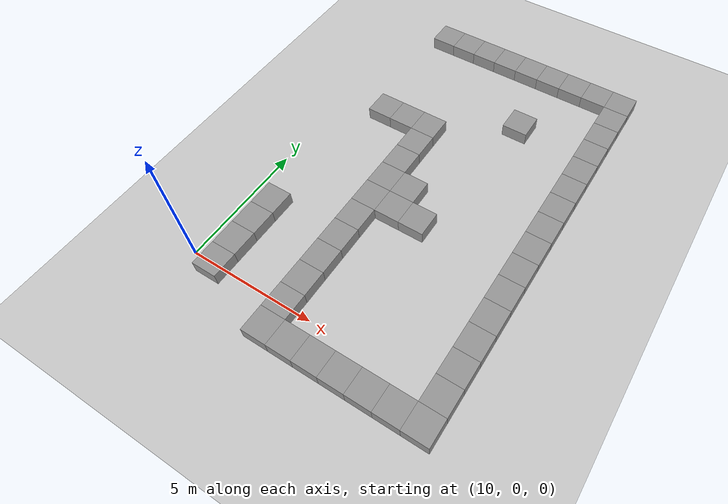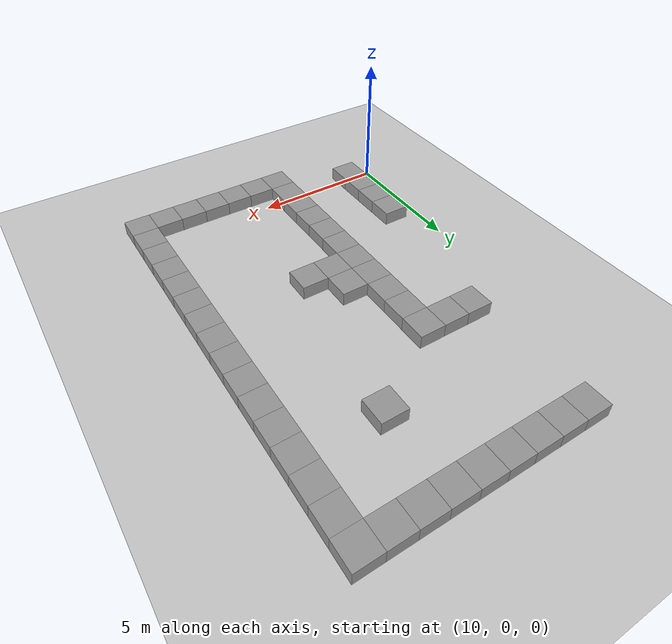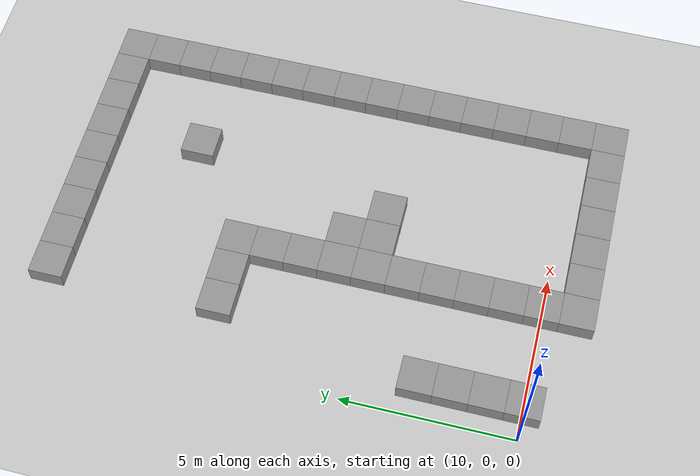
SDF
<sdf version="1.4">
 <world name="default">
  <model name="ground_plane">
   <static>1</static>
   <link name="link">
    <collision name="collision">
     <geometry><plane><normal>0 0 1</normal><size>100 100</size></plane></geometry>
     <surface><friction><ode><mu>100</mu><mu2>50</mu2></ode></friction></surface>
    </collision>
    <visual name="visual">
     <cast_shadows>0</cast_shadows>
     <geometry><plane><normal>0 0 1</normal><size>100 100</size></plane></geometry>
     <material>
      <script><uri>file://media/materials/scripts/gazebo.material</uri><name>Gazebo/Grey</name></script>
     </material>
    </visual>
    <velocity_decay><linear>0</linear><angular>0</angular></velocity_decay>
   </link>
  </model>
  <model name="unit_box_39">
   <pose>12 14 0 0 -0 0</pose>
   <link name="link">
    <inertial>
     <mass>1</mass>
     <inertia><ixx>1</ixx><ixy>0</ixy><ixz>0</ixz><iyy>1</iyy><iyz>0</iyz><izz>1</izz></inertia>
    </inertial>
    <collision name="collision"><geometry><box><size>1 1 1</size></box></geometry></collision>
    <visual name="visual">
     <geometry><box><size>1 1 1</size></box></geometry>
     <material>
      <script><uri>file://media/materials/scripts/gazebo.material</uri><name>Gazebo/Grey</name></script>
     </material>
    </visual>
    <velocity_decay><linear>0</linear><angular>0</angular></velocity_decay>
   </link>
   <static>1</static>
  </model>
  <model name="unit_box_40">
   <pose>13 14 0 0 -0 0</pose>
   <link name="link">
    <inertial>
     <mass>1</mass>
     <inertia><ixx>1</ixx><ixy>0</ixy><ixz>0</ixz><iyy>1</iyy><iyz>0</iyz><izz>1</izz></inertia>
    </inertial>
    <collision name="collision"><geometry><box><size>1 1 1</size></box></geometry></collision>
    <visual name="visual">
     <geometry><box><size>1 1 1</size></box></geometry>
     <material>
      <script><uri>file://media/materials/scripts/gazebo.material</uri><name>Gazebo/Grey</name></script>
     </material>
    </visual>
    <velocity_decay><linear>0</linear><angular>0</angular></velocity_decay>
   </link>
   <static>1</static>
  </model>
  <model name="unit_box_41">
   <pose>14 14 0 0 -0 0</pose>
   <link name="link">
    <inertial>
     <mass>1</mass>
     <inertia><ixx>1</ixx><ixy>0</ixy><ixz>0</ixz><iyy>1</iyy><iyz>0</iyz><izz>1</izz></inertia>
    </inertial>
    <collision name="collision"><geometry><box><size>1 1 1</size></box></geometry></collision>
    <visual name="visual">
     <geometry><box><size>1 1 1</size></box></geometry>
     <material>
      <script><uri>file://media/materials/scripts/gazebo.material</uri><name>Gazebo/Grey</name></script>
     </material>
    </visual>
    <velocity_decay><linear>0</linear><angular>0</angular></velocity_decay>
   </link>
   <static>1</static>
  </model>
  <model name="unit_box_42">
   <pose>15 14 0 0 -0 0</pose>
   <link name="link">
    <inertial>
     <mass>1</mass>
     <inertia><ixx>1</ixx><ixy>0</ixy><ixz>0</ixz><iyy>1</iyy><iyz>0</iyz><izz>1</izz></inertia>
    </inertial>
    <collision name="collision"><geometry><box><size>1 1 1</size></box></geometry></collision>
    <visual name="visual">
     <geometry><box><size>1 1 1</size></box></geometry>
     <material>
      <script><uri>file://media/materials/scripts/gazebo.material</uri><name>Gazebo/Grey</name></script>
     </material>
    </visual>
    <velocity_decay><linear>0</linear><angular>0</angular></velocity_decay>
   </link>
   <static>1</static>
  </model>
  <model name="unit_box_43">
   <pose>16 14 0 0 -0 0</pose>
   <link name="link">
    <inertial>
     <mass>1</mass>
     <inertia><ixx>1</ixx><ixy>0</ixy><ixz>0</ixz><iyy>1</iyy><iyz>0</iyz><izz>1</izz></inertia>
    </inertial>
    <collision name="collision"><geometry><box><size>1 1 1</size></box></geometry></collision>
    <visual name="visual">
     <geometry><box><size>1 1 1</size></box></geometry>
     <material>
      <script><uri>file://media/materials/scripts/gazebo.material</uri><name>Gazebo/Grey</name></script>
     </material>
    </visual>
    <velocity_decay><linear>0</linear><angular>0</angular></velocity_decay>
   </link>
   <static>1</static>
  </model>
  <model name="unit_box_44">
   <pose>17 14 0 0 -0 0</pose>
   <link name="link">
    <inertial>
     <mass>1</mass>
     <inertia><ixx>1</ixx><ixy>0</ixy><ixz>0</ixz><iyy>1</iyy><iyz>0</iyz><izz>1</izz></inertia>
    </inertial>
    <collision name="collision"><geometry><box><size>1 1 1</size></box></geometry></collision>
    <visual name="visual">
     <geometry><box><size>1 1 1</size></box></geometry>
     <material>
      <script><uri>file://media/materials/scripts/gazebo.material</uri><name>Gazebo/Grey</name></script>
     </material>
    </visual>
    <velocity_decay><linear>0</linear><angular>0</angular></velocity_decay>
   </link>
   <static>1</static>
  </model>
  <model name="unit_box_45">
   <pose>18 14 0 0 -0 0</pose>
   <link name="link">
    <inertial>
     <mass>1</mass>
     <inertia><ixx>1</ixx><ixy>0</ixy><ixz>0</ixz><iyy>1</iyy><iyz>0</iyz><izz>1</izz></inertia>
    </inertial>
    <collision name="collision"><geometry><box><size>1 1 1</size></box></geometry></collision>
    <visual name="visual">
     <geometry><box><size>1 1 1</size></box></geometry>
     <material>
      <script><uri>file://media/materials/scripts/gazebo.material</uri><name>Gazebo/Grey</name></script>
     </material>
    </visual>
    <velocity_decay><linear>0</linear><angular>0</angular></velocity_decay>
   </link>
   <static>1</static>
  </model>
  <model name="unit_box_46">
   <pose>19 14 0 0 -0 0</pose>
   <link name="link">
    <inertial>
     <mass>1</mass>
     <inertia><ixx>1</ixx><ixy>0</ixy><ixz>0</ixz><iyy>1</iyy><iyz>0</iyz><izz>1</izz></inertia>
    </inertial>
    <collision name="collision"><geometry><box><size>1 1 1</size></box></geometry></collision>
    <visual name="visual">
     <geometry><box><size>1 1 1</size></box></geometry>
     <material>
      <script><uri>file://media/materials/scripts/gazebo.material</uri><name>Gazebo/Grey</name></script>
     </material>
    </visual>
    <velocity_decay><linear>0</linear><angular>0</angular></velocity_decay>
   </link>
   <static>1</static>
  </model>
  <model name="unit_box_47">
   <pose>20 14 0 0 -0 0</pose>
   <link name="link">
    <inertial>
     <mass>1</mass>
     <inertia><ixx>1</ixx><ixy>0</ixy><ixz>0</ixz><iyy>1</iyy><iyz>0</iyz><izz>1</izz></inertia>
    </inertial>
    <collision name="collision"><geometry><box><size>1 1 1</size></box></geometry></collision>
    <visual name="visual">
     <geometry><box><size>1 1 1</size></box></geometry>
     <material>
      <script><uri>file://media/materials/scripts/gazebo.material</uri><name>Gazebo/Grey</name></script>
     </material>
    </visual>
    <velocity_decay><linear>0</linear><angular>0</angular></velocity_decay>
   </link>
   <static>1</static>
  </model>
  <model name="unit_box_48">
   <pose>20 13 0 0 -0 0</pose>
   <link name="link">
    <inertial>
     <mass>1</mass>
     <inertia><ixx>1</ixx><ixy>0</ixy><ixz>0</ixz><iyy>1</iyy><iyz>0</iyz><izz>1</izz></inertia>
    </inertial>
    <collision name="collision"><geometry><box><size>1 1 1</size></box></geometry></collision>
    <visual name="visual">
     <geometry><box><size>1 1 1</size></box></geometry>
     <material>
      <script><uri>file://media/materials/scripts/gazebo.material</uri><name>Gazebo/Grey</name></script>
     </material>
    </visual>
    <velocity_decay><linear>0</linear><angular>0</angular></velocity_decay>
   </link>
   <static>1</static>
  </model>
  <model name="unit_box_49">
   <pose>20 12 0 0 -0 0</pose>
   <link name="link">
    <inertial>
     <mass>1</mass>
     <inertia><ixx>1</ixx><ixy>0</ixy><ixz>0</ixz><iyy>1</iyy><iyz>0</iyz><izz>1</izz></inertia>
    </inertial>
    <collision name="collision"><geometry><box><size>1 1 1</size></box></geometry></collision>
    <visual name="visual">
     <geometry><box><size>1 1 1</size></box></geometry>
     <material>
      <script><uri>file://media/materials/scripts/gazebo.material</uri><name>Gazebo/Grey</name></script>
     </material>
    </visual>
    <velocity_decay><linear>0</linear><angular>0</angular></velocity_decay>
   </link>
   <static>1</static>
  </model>
  <model name="unit_box_50">
   <pose>20 11 0 0 -0 0</pose>
   <link name="link">
    <inertial>
     <mass>1</mass>
     <inertia><ixx>1</ixx><ixy>0</ixy><ixz>0</ixz><iyy>1</iyy><iyz>0</iyz><izz>1</izz></inertia>
    </inertial>
    <collision name="collision"><geometry><box><size>1 1 1</size></box></geometry></collision>
    <visual name="visual">
     <geometry><box><size>1 1 1</size></box></geometry>
     <material>
      <script><uri>file://media/materials/scripts/gazebo.material</uri><name>Gazebo/Grey</name></script>
     </material>
    </visual>
    <velocity_decay><linear>0</linear><angular>0</angular></velocity_decay>
   </link>
   <static>1</static>
  </model>
  <model name="unit_box_51">
   <pose>20 10 0 0 -0 0</pose>
   <link name="link">
    <inertial>
     <mass>1</mass>
     <inertia><ixx>1</ixx><ixy>0</ixy><ixz>0</ixz><iyy>1</iyy><iyz>0</iyz><izz>1</izz></inertia>
    </inertial>
    <collision name="collision"><geometry><box><size>1 1 1</size></box></geometry></collision>
    <visual name="visual">
     <geometry><box><size>1 1 1</size></box></geometry>
     <material>
      <script><uri>file://media/materials/scripts/gazebo.material</uri><name>Gazebo/Grey</name></script>
     </material>
    </visual>
    <velocity_decay><linear>0</linear><angular>0</angular></velocity_decay>
   </link>
   <static>1</static>
  </model>
  <model name="unit_box_52">
   <pose>20 9 0 0 -0 0</pose>
   <link name="link">
    <inertial>
     <mass>1</mass>
     <inertia><ixx>1</ixx><ixy>0</ixy><ixz>0</ixz><iyy>1</iyy><iyz>0</iyz><izz>1</izz></inertia>
    </inertial>
    <collision name="collision"><geometry><box><size>1 1 1</size></box></geometry></collision>
    <visual name="visual">
     <geometry><box><size>1 1 1</size></box></geometry>
     <material>
      <script><uri>file://media/materials/scripts/gazebo.material</uri><name>Gazebo/Grey</name></script>
     </material>
    </visual>
    <velocity_decay><linear>0</linear><angular>0</angular></velocity_decay>
   </link>
   <static>1</static>
  </model>
  <model name="unit_box_53">
   <pose>20 8 0 0 -0 0</pose>
   <link name="link">
    <inertial>
     <mass>1</mass>
     <inertia><ixx>1</ixx><ixy>0</ixy><ixz>0</ixz><iyy>1</iyy><iyz>0</iyz><izz>1</izz></inertia>
    </inertial>
    <collision name="collision"><geometry><box><size>1 1 1</size></box></geometry></collision>
    <visual name="visual">
     <geometry><box><size>1 1 1</size></box></geometry>
     <material>
      <script><uri>file://media/materials/scripts/gazebo.material</uri><name>Gazebo/Grey</name></script>
     </material>
    </visual>
    <velocity_decay><linear>0</linear><angular>0</angular></velocity_decay>
   </link>
   <static>1</static>
  </model>
  <model name="unit_box_54">
   <pose>20 7 0 0 -0 0</pose>
   <link name="link">
    <inertial>
     <mass>1</mass>
     <inertia><ixx>1</ixx><ixy>0</ixy><ixz>0</ixz><iyy>1</iyy><iyz>0</iyz><izz>1</izz></inertia>
    </inertial>
    <collision name="collision"><geometry><box><size>1 1 1</size></box></geometry></collision>
    <visual name="visual">
     <geometry><box><size>1 1 1</size></box></geometry>
     <material>
      <script><uri>file://media/materials/scripts/gazebo.material</uri><name>Gazebo/Grey</name></script>
     </material>
    </visual>
    <velocity_decay><linear>0</linear><angular>0</angular></velocity_decay>
   </link>
   <static>1</static>
  </model>
  <model name="unit_box_55">
   <pose>20 6 0 0 -0 0</pose>
   <link name="link">
    <inertial>
     <mass>1</mass>
     <inertia><ixx>1</ixx><ixy>0</ixy><ixz>0</ixz><iyy>1</iyy><iyz>0</iyz><izz>1</izz></inertia>
    </inertial>
    <collision name="collision"><geometry><box><size>1 1 1</size></box></geometry></collision>
    <visual name="visual">
     <geometry><box><size>1 1 1</size></box></geometry>
     <material>
      <script><uri>file://media/materials/scripts/gazebo.material</uri><name>Gazebo/Grey</name></script>
     </material>
    </visual>
    <velocity_decay><linear>0</linear><angular>0</angular></velocity_decay>
   </link>
   <static>1</static>
  </model>
  <model name="unit_box_56">
   <pose>20 5 0 0 -0 0</pose>
   <link name="link">
    <inertial>
     <mass>1</mass>
     <inertia><ixx>1</ixx><ixy>0</ixy><ixz>0</ixz><iyy>1</iyy><iyz>0</iyz><izz>1</izz></inertia>
    </inertial>
    <collision name="collision"><geometry><box><size>1 1 1</size></box></geometry></collision>
    <visual name="visual">
     <geometry><box><size>1 1 1</size></box></geometry>
     <material>
      <script><uri>file://media/materials/scripts/gazebo.material</uri><name>Gazebo/Grey</name></script>
     </material>
    </visual>
    <velocity_decay><linear>0</linear><angular>0</angular></velocity_decay>
   </link>
   <static>1</static>
  </model>
  <model name="unit_box_57">
   <pose>20 4 0 0 -0 0</pose>
   <link name="link">
    <inertial>
     <mass>1</mass>
     <inertia><ixx>1</ixx><ixy>0</ixy><ixz>0</ixz><iyy>1</iyy><iyz>0</iyz><izz>1</izz></inertia>
    </inertial>
    <collision name="collision"><geometry><box><size>1 1 1</size></box></geometry></collision>
    <visual name="visual">
     <geometry><box><size>1 1 1</size></box></geometry>
     <material>
      <script><uri>file://media/materials/scripts/gazebo.material</uri><name>Gazebo/Grey</name></script>
     </material>
    </visual>
    <velocity_decay><linear>0</linear><angular>0</angular></velocity_decay>
   </link>
   <static>1</static>
  </model>
  <model name="unit_box_58">
   <pose>20 3 0 0 -0 0</pose>
   <link name="link">
    <inertial>
     <mass>1</mass>
     <inertia><ixx>1</ixx><ixy>0</ixy><ixz>0</ixz><iyy>1</iyy><iyz>0</iyz><izz>1</izz></inertia>
    </inertial>
    <collision name="collision"><geometry><box><size>1 1 1</size></box></geometry></collision>
    <visual name="visual">
     <geometry><box><size>1 1 1</size></box></geometry>
     <material>
      <script><uri>file://media/materials/scripts/gazebo.material</uri><name>Gazebo/Grey</name></script>
     </material>
    </visual>
    <velocity_decay><linear>0</linear><angular>0</angular></velocity_decay>
   </link>
   <static>1</static>
  </model>
  <model name="unit_box_59">
   <pose>20 2 0 0 -0 0</pose>
   <link name="link">
    <inertial>
     <mass>1</mass>
     <inertia><ixx>1</ixx><ixy>0</ixy><ixz>0</ixz><iyy>1</iyy><iyz>0</iyz><izz>1</izz></inertia>
    </inertial>
    <collision name="collision"><geometry><box><size>1 1 1</size></box></geometry></collision>
    <visual name="visual">
     <geometry><box><size>1 1 1</size></box></geometry>
     <material>
      <script><uri>file://media/materials/scripts/gazebo.material</uri><name>Gazebo/Grey</name></script>
     </material>
    </visual>
    <velocity_decay><linear>0</linear><angular>0</angular></velocity_decay>
   </link>
   <static>1</static>
  </model>
  <model name="unit_box_60">
   <pose>20 1 0 0 -0 0</pose>
   <link name="link">
    <inertial>
     <mass>1</mass>
     <inertia><ixx>1</ixx><ixy>0</ixy><ixz>0</ixz><iyy>1</iyy><iyz>0</iyz><izz>1</izz></inertia>
    </inertial>
    <collision name="collision"><geometry><box><size>1 1 1</size></box></geometry></collision>
    <visual name="visual">
     <geometry><box><size>1 1 1</size></box></geometry>
     <material>
      <script><uri>file://media/materials/scripts/gazebo.material</uri><name>Gazebo/Grey</name></script>
     </material>
    </visual>
    <velocity_decay><linear>0</linear><angular>0</angular></velocity_decay>
   </link>
   <static>1</static>
  </model>
  <model name="unit_box_61">
   <pose>20 0 0 0 -0 0</pose>
   <link name="link">
    <inertial>
     <mass>1</mass>
     <inertia><ixx>1</ixx><ixy>0</ixy><ixz>0</ixz><iyy>1</iyy><iyz>0</iyz><izz>1</izz></inertia>
    </inertial>
    <collision name="collision"><geometry><box><size>1 1 1</size></box></geometry></collision>
    <visual name="visual">
     <geometry><box><size>1 1 1</size></box></geometry>
     <material>
      <script><uri>file://media/materials/scripts/gazebo.material</uri><name>Gazebo/Grey</name></script>
     </material>
    </visual>
    <velocity_decay><linear>0</linear><angular>0</angular></velocity_decay>
   </link>
   <static>1</static>
  </model>
  <model name="unit_box_62">
   <pose>20 -1 0 0 -0 0</pose>
   <link name="link">
    <inertial>
     <mass>1</mass>
     <inertia><ixx>1</ixx><ixy>0</ixy><ixz>0</ixz><iyy>1</iyy><iyz>0</iyz><izz>1</izz></inertia>
    </inertial>
    <collision name="collision"><geometry><box><size>1 1 1</size></box></geometry></collision>
    <visual name="visual">
     <geometry><box><size>1 1 1</size></box></geometry>
     <material>
      <script><uri>file://media/materials/scripts/gazebo.material</uri><name>Gazebo/Grey</name></script>
     </material>
    </visual>
    <velocity_decay><linear>0</linear><angular>0</angular></velocity_decay>
   </link>
   <static>1</static>
  </model>
  <model name="unit_box_63">
   <pose>19 -1 0 0 -0 0</pose>
   <link name="link">
    <inertial>
     <mass>1</mass>
     <inertia><ixx>1</ixx><ixy>0</ixy><ixz>0</ixz><iyy>1</iyy><iyz>0</iyz><izz>1</izz></inertia>
    </inertial>
    <collision name="collision"><geometry><box><size>1 1 1</size></box></geometry></collision>
    <visual name="visual">
     <geometry><box><size>1 1 1</size></box></geometry>
     <material>
      <script><uri>file://media/materials/scripts/gazebo.material</uri><name>Gazebo/Grey</name></script>
     </material>
    </visual>
    <velocity_decay><linear>0</linear><angular>0</angular></velocity_decay>
   </link>
   <static>1</static>
  </model>
  <model name="unit_box_64">
   <pose>18 -1 0 0 -0 0</pose>
   <link name="link">
    <inertial>
     <mass>1</mass>
     <inertia><ixx>1</ixx><ixy>0</ixy><ixz>0</ixz><iyy>1</iyy><iyz>0</iyz><izz>1</izz></inertia>
    </inertial>
    <collision name="collision"><geometry><box><size>1 1 1</size></box></geometry></collision>
    <visual name="visual">
     <geometry><box><size>1 1 1</size></box></geometry>
     <material>
      <script><uri>file://media/materials/scripts/gazebo.material</uri><name>Gazebo/Grey</name></script>
     </material>
    </visual>
    <velocity_decay><linear>0</linear><angular>0</angular></velocity_decay>
   </link>
   <static>1</static>
  </model>
  <model name="unit_box_65">
   <pose>17 -1 0 0 -0 0</pose>
   <link name="link">
    <inertial>
     <mass>1</mass>
     <inertia><ixx>1</ixx><ixy>0</ixy><ixz>0</ixz><iyy>1</iyy><iyz>0</iyz><izz>1</izz></inertia>
    </inertial>
    <collision name="collision"><geometry><box><size>1 1 1</size></box></geometry></collision>
    <visual name="visual">
     <geometry><box><size>1 1 1</size></box></geometry>
     <material>
      <script><uri>file://media/materials/scripts/gazebo.material</uri><name>Gazebo/Grey</name></script>
     </material>
    </visual>
    <velocity_decay><linear>0</linear><angular>0</angular></velocity_decay>
   </link>
   <static>1</static>
  </model>
  <model name="unit_box_66">
   <pose>16 -1 0 0 -0 0</pose>
   <link name="link">
    <inertial>
     <mass>1</mass>
     <inertia><ixx>1</ixx><ixy>0</ixy><ixz>0</ixz><iyy>1</iyy><iyz>0</iyz><izz>1</izz></inertia>
    </inertial>
    <collision name="collision"><geometry><box><size>1 1 1</size></box></geometry></collision>
    <visual name="visual">
     <geometry><box><size>1 1 1</size></box></geometry>
     <material>
      <script><uri>file://media/materials/scripts/gazebo.material</uri><name>Gazebo/Grey</name></script>
     </material>
    </visual>
    <velocity_decay><linear>0</linear><angular>0</angular></velocity_decay>
   </link>
   <static>1</static>
  </model>
  <model name="unit_box_67">
   <pose>15 -1 0 0 -0 0</pose>
   <link name="link">
    <inertial>
     <mass>1</mass>
     <inertia><ixx>1</ixx><ixy>0</ixy><ixz>0</ixz><iyy>1</iyy><iyz>0</iyz><izz>1</izz></inertia>
    </inertial>
    <collision name="collision"><geometry><box><size>1 1 1</size></box></geometry></collision>
    <visual name="visual">
     <geometry><box><size>1 1 1</size></box></geometry>
     <material>
      <script><uri>file://media/materials/scripts/gazebo.material</uri><name>Gazebo/Grey</name></script>
     </material>
    </visual>
    <velocity_decay><linear>0</linear><angular>0</angular></velocity_decay>
   </link>
   <static>1</static>
  </model>
  <model name="unit_box_68">
   <pose>14 -1 0 0 -0 0</pose>
   <link name="link">
    <inertial>
     <mass>1</mass>
     <inertia><ixx>1</ixx><ixy>0</ixy><ixz>0</ixz><iyy>1</iyy><iyz>0</iyz><izz>1</izz></inertia>
    </inertial>
    <collision name="collision"><geometry><box><size>1 1 1</size></box></geometry></collision>
    <visual name="visual">
     <geometry><box><size>1 1 1</size></box></geometry>
     <material>
      <script><uri>file://media/materials/scripts/gazebo.material</uri><name>Gazebo/Grey</name></script>
     </material>
    </visual>
    <velocity_decay><linear>0</linear><angular>0</angular></velocity_decay>
   </link>
   <static>1</static>
  </model>
  <model name="unit_box_69">
   <pose>14 0 0 0 -0 0</pose>
   <link name="link">
    <inertial>
     <mass>1</mass>
     <inertia><ixx>1</ixx><ixy>0</ixy><ixz>0</ixz><iyy>1</iyy><iyz>0</iyz><izz>1</izz></inertia>
    </inertial>
    <collision name="collision"><geometry><box><size>1 1 1</size></box></geometry></collision>
    <visual name="visual">
     <geometry><box><size>1 1 1</size></box></geometry>
     <material>
      <script><uri>file://media/materials/scripts/gazebo.material</uri><name>Gazebo/Grey</name></script>
     </material>
    </visual>
    <velocity_decay><linear>0</linear><angular>0</angular></velocity_decay>
   </link>
   <static>1</static>
  </model>
  <model name="unit_box_70">
   <pose>14 1 0 0 -0 0</pose>
   <link name="link">
    <inertial>
     <mass>1</mass>
     <inertia><ixx>1</ixx><ixy>0</ixy><ixz>0</ixz><iyy>1</iyy><iyz>0</iyz><izz>1</izz></inertia>
    </inertial>
    <collision name="collision"><geometry><box><size>1 1 1</size></box></geometry></collision>
    <visual name="visual">
     <geometry><box><size>1 1 1</size></box></geometry>
     <material>
      <script><uri>file://media/materials/scripts/gazebo.material</uri><name>Gazebo/Grey</name></script>
     </material>
    </visual>
    <velocity_decay><linear>0</linear><angular>0</angular></velocity_decay>
   </link>
   <static>1</static>
  </model>
  <model name="unit_box_71">
   <pose>14 2 0 0 -0 0</pose>
   <link name="link">
    <inertial>
     <mass>1</mass>
     <inertia><ixx>1</ixx><ixy>0</ixy><ixz>0</ixz><iyy>1</iyy><iyz>0</iyz><izz>1</izz></inertia>
    </inertial>
    <collision name="collision"><geometry><box><size>1 1 1</size></box></geometry></collision>
    <visual name="visual">
     <geometry><box><size>1 1 1</size></box></geometry>
     <material>
      <script><uri>file://media/materials/scripts/gazebo.material</uri><name>Gazebo/Grey</name></script>
     </material>
    </visual>
    <velocity_decay><linear>0</linear><angular>0</angular></velocity_decay>
   </link>
   <static>1</static>
  </model>
  <model name="unit_box_72">
   <pose>14 3 0 0 -0 0</pose>
   <link name="link">
    <inertial>
     <mass>1</mass>
     <inertia><ixx>1</ixx><ixy>0</ixy><ixz>0</ixz><iyy>1</iyy><iyz>0</iyz><izz>1</izz></inertia>
    </inertial>
    <collision name="collision"><geometry><box><size>1 1 1</size></box></geometry></collision>
    <visual name="visual">
     <geometry><box><size>1 1 1</size></box></geometry>
     <material>
      <script><uri>file://media/materials/scripts/gazebo.material</uri><name>Gazebo/Grey</name></script>
     </material>
    </visual>
    <velocity_decay><linear>0</linear><angular>0</angular></velocity_decay>
   </link>
   <static>1</static>
  </model>
  <model name="unit_box_73">
   <pose>14 4 0 0 -0 0</pose>
   <link name="link">
    <inertial>
     <mass>1</mass>
     <inertia><ixx>1</ixx><ixy>0</ixy><ixz>0</ixz><iyy>1</iyy><iyz>0</iyz><izz>1</izz></inertia>
    </inertial>
    <collision name="collision"><geometry><box><size>1 1 1</size></box></geometry></collision>
    <visual name="visual">
     <geometry><box><size>1 1 1</size></box></geometry>
     <material>
      <script><uri>file://media/materials/scripts/gazebo.material</uri><name>Gazebo/Grey</name></script>
     </material>
    </visual>
    <velocity_decay><linear>0</linear><angular>0</angular></velocity_decay>
   </link>
   <static>1</static>
  </model>
  <model name="unit_box_74">
   <pose>14 5 0 0 -0 0</pose>
   <link name="link">
    <inertial>
     <mass>1</mass>
     <inertia><ixx>1</ixx><ixy>0</ixy><ixz>0</ixz><iyy>1</iyy><iyz>0</iyz><izz>1</izz></inertia>
    </inertial>
    <collision name="collision"><geometry><box><size>1 1 1</size></box></geometry></collision>
    <visual name="visual">
     <geometry><box><size>1 1 1</size></box></geometry>
     <material>
      <script><uri>file://media/materials/scripts/gazebo.material</uri><name>Gazebo/Grey</name></script>
     </material>
    </visual>
    <velocity_decay><linear>0</linear><angular>0</angular></velocity_decay>
   </link>
   <static>1</static>
  </model>
  <model name="unit_box_75">
   <pose>14 6 0 0 -0 0</pose>
   <link name="link">
    <inertial>
     <mass>1</mass>
     <inertia><ixx>1</ixx><ixy>0</ixy><ixz>0</ixz><iyy>1</iyy><iyz>0</iyz><izz>1</izz></inertia>
    </inertial>
    <collision name="collision"><geometry><box><size>1 1 1</size></box></geometry></collision>
    <visual name="visual">
     <geometry><box><size>1 1 1</size></box></geometry>
     <material>
      <script><uri>file://media/materials/scripts/gazebo.material</uri><name>Gazebo/Grey</name></script>
     </material>
    </visual>
    <velocity_decay><linear>0</linear><angular>0</angular></velocity_decay>
   </link>
   <static>1</static>
  </model>
  <model name="unit_box_76">
   <pose>14 7 0 0 -0 0</pose>
   <link name="link">
    <inertial>
     <mass>1</mass>
     <inertia><ixx>1</ixx><ixy>0</ixy><ixz>0</ixz><iyy>1</iyy><iyz>0</iyz><izz>1</izz></inertia>
    </inertial>
    <collision name="collision"><geometry><box><size>1 1 1</size></box></geometry></collision>
    <visual name="visual">
     <geometry><box><size>1 1 1</size></box></geometry>
     <material>
      <script><uri>file://media/materials/scripts/gazebo.material</uri><name>Gazebo/Grey</name></script>
     </material>
    </visual>
    <velocity_decay><linear>0</linear><angular>0</angular></velocity_decay>
   </link>
   <static>1</static>
  </model>
  <model name="unit_box_77">
   <pose>14 8 0 0 -0 0</pose>
   <link name="link">
    <inertial>
     <mass>1</mass>
     <inertia><ixx>1</ixx><ixy>0</ixy><ixz>0</ixz><iyy>1</iyy><iyz>0</iyz><izz>1</izz></inertia>
    </inertial>
    <collision name="collision"><geometry><box><size>1 1 1</size></box></geometry></collision>
    <visual name="visual">
     <geometry><box><size>1 1 1</size></box></geometry>
     <material>
      <script><uri>file://media/materials/scripts/gazebo.material</uri><name>Gazebo/Grey</name></script>
     </material>
    </visual>
    <velocity_decay><linear>0</linear><angular>0</angular></velocity_decay>
   </link>
   <static>1</static>
  </model>
  <model name="unit_box_78">
   <pose>14 9 0 0 -0 0</pose>
   <link name="link">
    <inertial>
     <mass>1</mass>
     <inertia><ixx>1</ixx><ixy>0</ixy><ixz>0</ixz><iyy>1</iyy><iyz>0</iyz><izz>1</izz></inertia>
    </inertial>
    <collision name="collision"><geometry><box><size>1 1 1</size></box></geometry></collision>
    <visual name="visual">
     <geometry><box><size>1 1 1</size></box></geometry>
     <material>
      <script><uri>file://media/materials/scripts/gazebo.material</uri><name>Gazebo/Grey</name></script>
     </material>
    </visual>
    <velocity_decay><linear>0</linear><angular>0</angular></velocity_decay>
   </link>
   <static>1</static>
  </model>
  <model name="unit_box_79">
   <pose>13 9 0 0 -0 0</pose>
   <link name="link">
    <inertial>
     <mass>1</mass>
     <inertia><ixx>1</ixx><ixy>0</ixy><ixz>0</ixz><iyy>1</iyy><iyz>0</iyz><izz>1</izz></inertia>
    </inertial>
    <collision name="collision"><geometry><box><size>1 1 1</size></box></geometry></collision>
    <visual name="visual">
     <geometry><box><size>1 1 1</size></box></geometry>
     <material>
      <script><uri>file://media/materials/scripts/gazebo.material</uri><name>Gazebo/Grey</name></script>
     </material>
    </visual>
    <velocity_decay><linear>0</linear><angular>0</angular></velocity_decay>
   </link>
   <static>1</static>
  </model>
  <model name="unit_box_80">
   <pose>12 9 0 0 -0 0</pose>
   <link name="link">
    <inertial>
     <mass>1</mass>
     <inertia><ixx>1</ixx><ixy>0</ixy><ixz>0</ixz><iyy>1</iyy><iyz>0</iyz><izz>1</izz></inertia>
    </inertial>
    <collision name="collision"><geometry><box><size>1 1 1</size></box></geometry></collision>
    <visual name="visual">
     <geometry><box><size>1 1 1</size></box></geometry>
     <material>
      <script><uri>file://media/materials/scripts/gazebo.material</uri><name>Gazebo/Grey</name></script>
     </material>
    </visual>
    <velocity_decay><linear>0</linear><angular>0</angular></velocity_decay>
   </link>
   <static>1</static>
  </model>
  <model name="unit_box_87">
   <pose>11 3 0 0 -0 0</pose>
   <link name="link">
    <inertial>
     <mass>1</mass>
     <inertia><ixx>1</ixx><ixy>0</ixy><ixz>0</ixz><iyy>1</iyy><iyz>0</iyz><izz>1</izz></inertia>
    </inertial>
    <collision name="collision"><geometry><box><size>1 1 1</size></box></geometry></collision>
    <visual name="visual">
     <geometry><box><size>1 1 1</size></box></geometry>
     <material>
      <script><uri>file://media/materials/scripts/gazebo.material</uri><name>Gazebo/Grey</name></script>
     </material>
    </visual>
    <velocity_decay><linear>0</linear><angular>0</angular></velocity_decay>
   </link>
   <static>1</static>
  </model>
  <model name="unit_box_88">
   <pose>11 2 0 0 -0 0</pose>
   <link name="link">
    <inertial>
     <mass>1</mass>
     <inertia><ixx>1</ixx><ixy>0</ixy><ixz>0</ixz><iyy>1</iyy><iyz>0</iyz><izz>1</izz></inertia>
    </inertial>
    <collision name="collision"><geometry><box><size>1 1 1</size></box></geometry></collision>
    <visual name="visual">
     <geometry><box><size>1 1 1</size></box></geometry>
     <material>
      <script><uri>file://media/materials/scripts/gazebo.material</uri><name>Gazebo/Grey</name></script>
     </material>
    </visual>
    <velocity_decay><linear>0</linear><angular>0</angular></velocity_decay>
   </link>
   <static>1</static>
  </model>
  <model name="unit_box_89">
   <pose>11 1 0 0 -0 0</pose>
   <link name="link">
    <inertial>
     <mass>1</mass>
     <inertia><ixx>1</ixx><ixy>0</ixy><ixz>0</ixz><iyy>1</iyy><iyz>0</iyz><izz>1</izz></inertia>
    </inertial>
    <collision name="collision"><geometry><box><size>1 1 1</size></box></geometry></collision>
    <visual name="visual">
     <geometry><box><size>1 1 1</size></box></geometry>
     <material>
      <script><uri>file://media/materials/scripts/gazebo.material</uri><name>Gazebo/Grey</name></script>
     </material>
    </visual>
    <velocity_decay><linear>0</linear><angular>0</angular></velocity_decay>
   </link>
   <static>1</static>
  </model>
  <model name="unit_box_90">
   <pose>11 0 0 0 -0 0</pose>
   <link name="link">
    <inertial>
     <mass>1</mass>
     <inertia><ixx>1</ixx><ixy>0</ixy><ixz>0</ixz><iyy>1</iyy><iyz>0</iyz><izz>1</izz></inertia>
    </inertial>
    <collision name="collision"><geometry><box><size>1 1 1</size></box></geometry></collision>
    <visual name="visual">
     <geometry><box><size>1 1 1</size></box></geometry>
     <material>
      <script><uri>file://media/materials/scripts/gazebo.material</uri><name>Gazebo/Grey</name></script>
     </material>
    </visual>
    <velocity_decay><linear>0</linear><angular>0</angular></velocity_decay>
   </link>
   <static>1</static>
  </model>
  <model name="unit_box_98">
   <pose>17 11 0 0 -0 0</pose>
   <link name="link">
    <inertial>
     <mass>1</mass>
     <inertia><ixx>1</ixx><ixy>0</ixy><ixz>0</ixz><iyy>1</iyy><iyz>0</iyz><izz>1</izz></inertia>
    </inertial>
    <collision name="collision"><geometry><box><size>1 1 1</size></box></geometry></collision>
    <visual name="visual">
     <geometry><box><size>1 1 1</size></box></geometry>
     <material>
      <script><uri>file://media/materials/scripts/gazebo.material</uri><name>Gazebo/Grey</name></script>
     </material>
    </visual>
    <velocity_decay><linear>0</linear><angular>0</angular></velocity_decay>
   </link>
   <static>1</static>
  </model>
  <model name="unit_box_99">
   <pose>15 6 0 0 -0 0</pose>
   <link name="link">
    <inertial>
     <mass>1</mass>
     <inertia><ixx>1</ixx><ixy>0</ixy><ixz>0</ixz><iyy>1</iyy><iyz>0</iyz><izz>1</izz></inertia>
    </inertial>
    <collision name="collision"><geometry><box><size>1 1 1</size></box></geometry></collision>
    <visual name="visual">
     <geometry><box><size>1 1 1</size></box></geometry>
     <material>
      <script><uri>file://media/materials/scripts/gazebo.material</uri><name>Gazebo/Grey</name></script>
     </material>
    </visual>
    <velocity_decay><linear>0</linear><angular>0</angular></velocity_decay>
   </link>
   <static>1</static>
  </model>
  <model name="unit_box_100">
   <pose>15 5 0 0 -0 0</pose>
   <link name="link">
    <inertial>
     <mass>1</mass>
     <inertia><ixx>1</ixx><ixy>0</ixy><ixz>0</ixz><iyy>1</iyy><iyz>0</iyz><izz>1</izz></inertia>
    </inertial>
    <collision name="collision"><geometry><box><size>1 1 1</size></box></geometry></collision>
    <visual name="visual">
     <geometry><box><size>1 1 1</size></box></geometry>
     <material>
      <script><uri>file://media/materials/scripts/gazebo.material</uri><name>Gazebo/Grey</name></script>
     </material>
    </visual>
    <velocity_decay><linear>0</linear><angular>0</angular></velocity_decay>
   </link>
   <static>1</static>
  </model>
  <model name="unit_box_101">
   <pose>16 5 0 0 -0 0</pose>
   <link name="link">
    <inertial>
     <mass>1</mass>
     <inertia><ixx>1</ixx><ixy>0</ixy><ixz>0</ixz><iyy>1</iyy><iyz>0</iyz><izz>1</izz></inertia>
    </inertial>
    <collision name="collision"><geometry><box><size>1 1 1</size></box></geometry></collision>
    <visual name="visual">
     <geometry><box><size>1 1 1</size></box></geometry>
     <material>
      <script><uri>file://media/materials/scripts/gazebo.material</uri><name>Gazebo/Grey</name></script>
     </material>
    </visual>
    <velocity_decay><linear>0</linear><angular>0</angular></velocity_decay>
   </link>
   <static>1</static>
  </model>
 </world>
</sdf>
